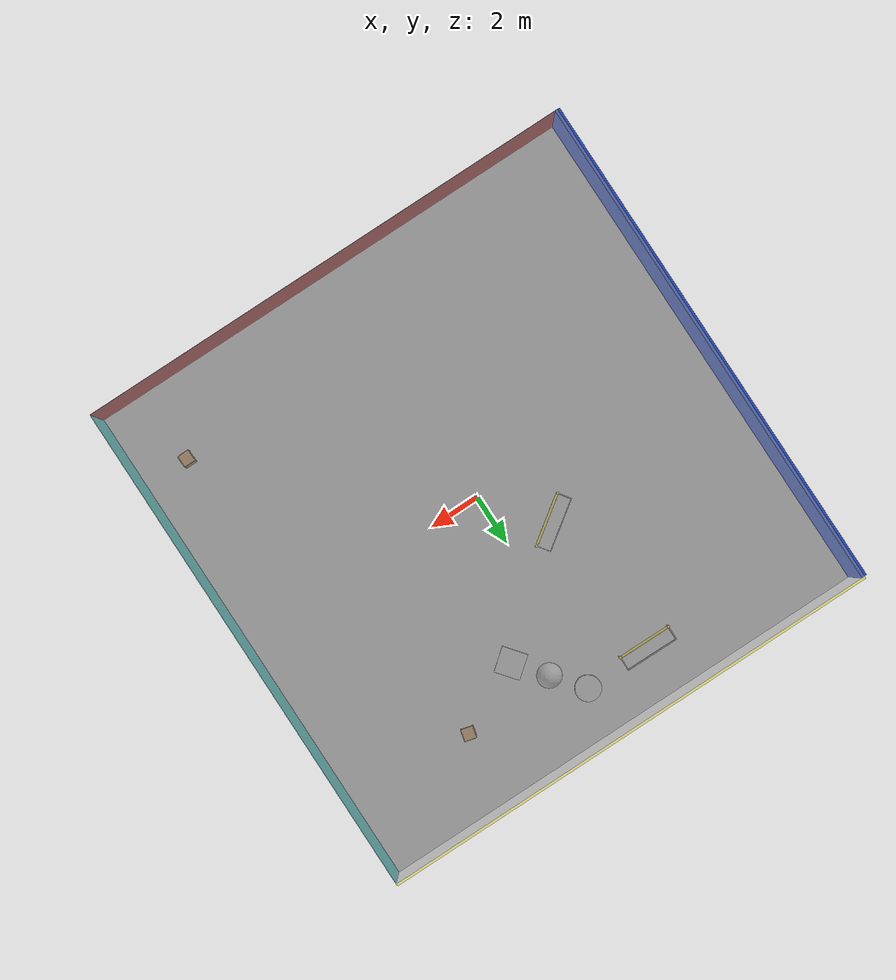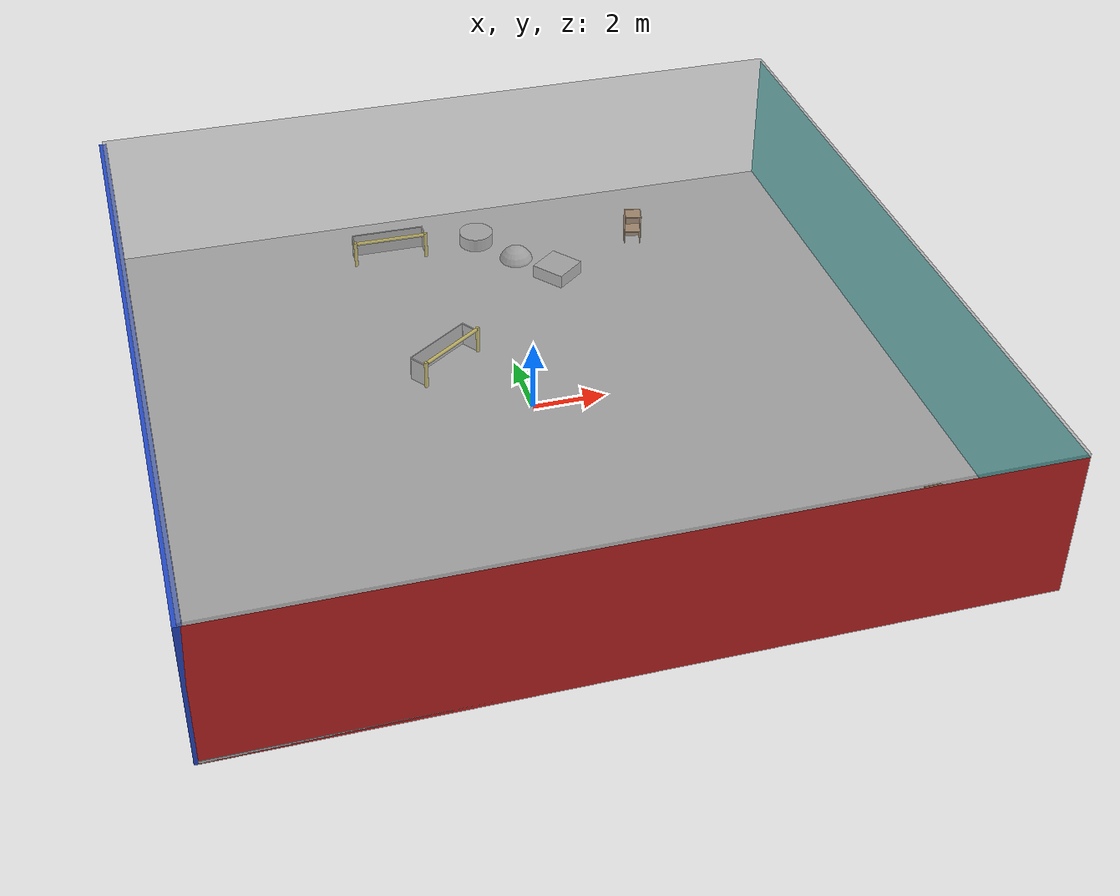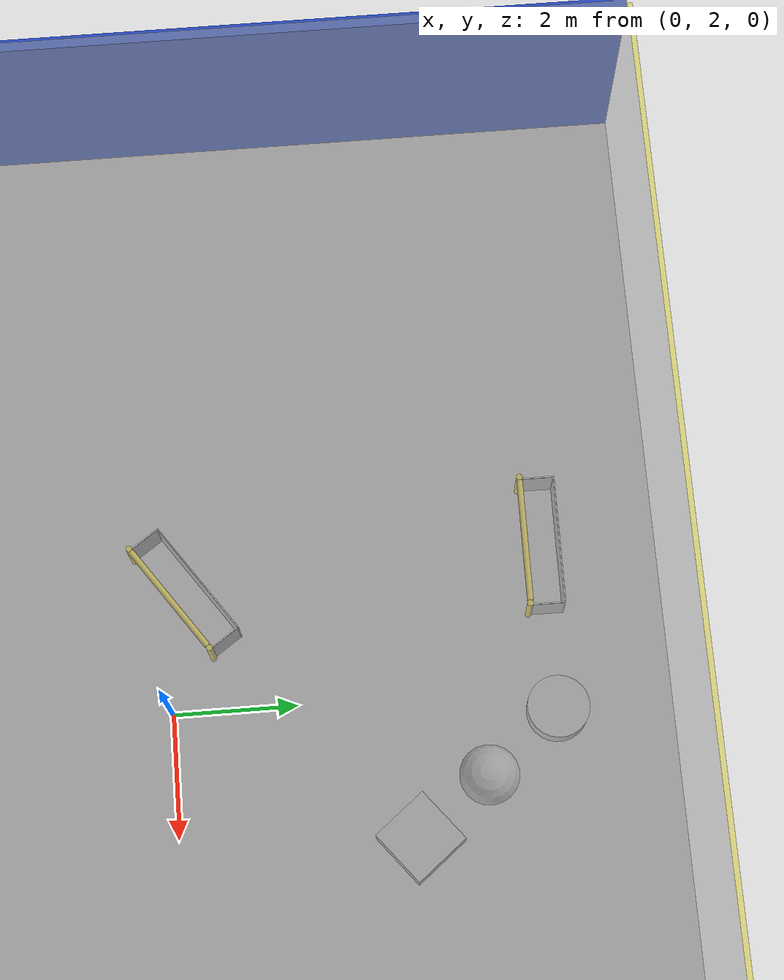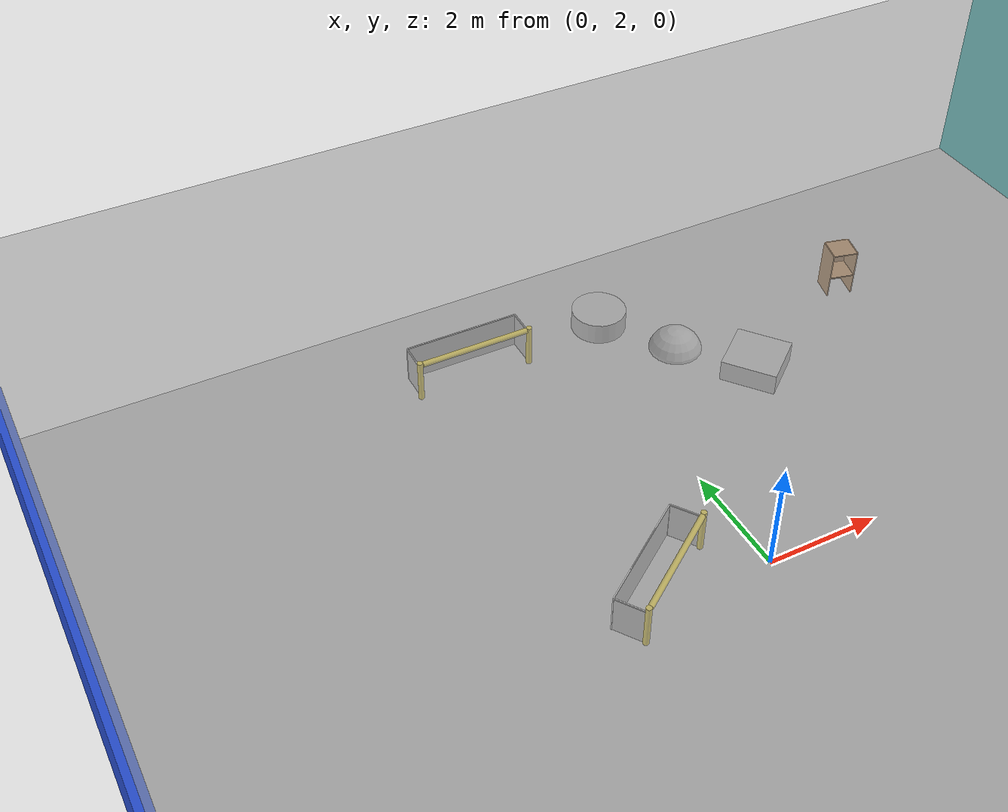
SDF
<sdf version="1.4">
 <world name="default">
  <physics type="ode">
   <max_step_size>0.001</max_step_size>
   <real_time_factor>1</real_time_factor>
   <real_time_update_rate>1000</real_time_update_rate>
   <gravity>0 0 -9.8</gravity>
  </physics>
  <scene><ambient>0.4 0.4 0.4 1</ambient><background>0.7 0.7 0.7 1</background><shadows>1</shadows></scene>
  <model name="Surrounding">
   <static>1</static>
   <link name="Ceiling">
    <collision name="Ceiling_Collision"><geometry><box><size>20 20 0.1</size></box></geometry></collision>
    <visual name="Ceiling_Visual">
     <geometry><box><size>20 20 0.1</size></box></geometry>
     <material>
      <script><uri>file://media/materials/scripts/gazebo.material</uri><name>Gazebo/GreyTransparent</name></script>
     </material>
    </visual>
    <pose>0 0 4.05 0 0 0</pose>
   </link>
   <link name="Wall_South">
    <collision name="Wall_South_Collision">
     <geometry><box><size>20 0 4</size></box></geometry>
     <pose>0 0 2 0 -0 0</pose>
    </collision>
    <visual name="Wall_South_Visual">
     <pose>0 0 2 0 -0 0</pose>
     <geometry><box><size>20 0 4</size></box></geometry>
     <material>
      <script><uri>file://media/materials/scripts/gazebo.material</uri><name>Gazebo/Red</name></script>
     </material>
    </visual>
    <velocity_decay><linear>0</linear><angular>0</angular></velocity_decay>
    <pose>0 -10 0 0 -0 0</pose>
   </link>
   <link name="Wall_East">
    <collision name="Wall_21_Collision">
     <geometry><box><size>20 0 4</size></box></geometry>
     <pose>0 0 2 0 -0 0</pose>
    </collision>
    <visual name="Wall_21_Visual">
     <pose>0 0 2 0 -0 0</pose>
     <geometry><box><size>20 0 4</size></box></geometry>
     <material>
      <script>
       <uri>file://media/materials/scripts/gazebo.material</uri>
       <name>Gazebo/TurquoiseGlowOutline</name>
      </script>
     </material>
    </visual>
    <velocity_decay><linear>0</linear><angular>0</angular></velocity_decay>
    <pose>10 0 0 0 -0 1.5708</pose>
   </link>
   <link name="Wall_North">
    <collision name="Wall_22_Collision">
     <geometry><box><size>20 0.2 4</size></box></geometry>
     <pose>0 0 2 0 -0 0</pose>
    </collision>
    <visual name="Wall_22_Visual">
     <pose>0 0 2 0 -0 0</pose>
     <geometry><box><size>20 0.2 4</size></box></geometry>
     <material>
      <script>
       <uri>file://media/materials/scripts/gazebo.material</uri>
       <name>Gazebo/YellowTransparent</name>
      </script>
     </material>
    </visual>
    <velocity_decay><linear>0</linear><angular>0</angular></velocity_decay>
    <pose>0 10 0 0 -0 0</pose>
   </link>
   <link name="Wall_West">
    <collision name="Wall_23_Collision">
     <geometry><box><size>20 0.2 4</size></box></geometry>
     <pose>0 0 2 0 -0 0</pose>
    </collision>
    <visual name="Wall_23_Visual">
     <pose>0 0 2 0 -0 0</pose>
     <geometry><box><size>20 0.2 4</size></box></geometry>
     <material>
      <script><uri>file://media/materials/scripts/gazebo.material</uri><name>Gazebo/Blue</name></script>
     </material>
    </visual>
    <velocity_decay><linear>0</linear><angular>0</angular></velocity_decay>
    <pose>-10 0 0 0 0 -1.5708</pose>
   </link>
   <link name="Ground_link">
    <collision name="collision">
     <pose>0 0 .05 0 -0 0</pose>
     <geometry><box><size>20 20 0.1</size></box></geometry>
    </collision>
    <visual name="visual">
     <pose>0 0 .05 0 -0 0</pose>
     <geometry><box><size>20 20 0.1</size></box></geometry>
     <material>
      <script><uri>file://media/materials/scripts/gazebo.material</uri><name>Gazebo/LightOff</name></script>
     </material>
    </visual>
   </link>
   <static>1</static>
  </model>
  <spherical_coordinates>
   <surface_model>EARTH_WGS84</surface_model>
   <latitude_deg>0</latitude_deg>
   <longitude_deg>0</longitude_deg>
   <elevation>0</elevation>
   <heading_deg>0</heading_deg>
  </spherical_coordinates>
  <light name="lightball_0" type="diffuse">
   <diffuse>0.8 0.8 0.8 1</diffuse>
   <specular>0.2 0.2 0.2 1</specular>
   <attenuation>
    <range>100</range>
    <constant>0.7</constant>
    <linear>0.01</linear>
    <quadratic>0.001</quadratic>
   </attenuation>
   <direction>-0.5 0.1 -0.9</direction>
   <pose>-5.42457853884 8.5883633985 0.952985177601 0 0 0</pose>
  </light>
  <light name="lightball_1" type="diffuse">
   <diffuse>0.8 0.8 0.8 1</diffuse>
   <specular>0.2 0.2 0.2 1</specular>
   <attenuation>
    <range>100</range>
    <constant>0.7</constant>
    <linear>0.01</linear>
    <quadratic>0.001</quadratic>
   </attenuation>
   <direction>-0.5 0.1 -0.9</direction>
   <pose>-0.470910711465 8.38088673768 3.82927996229 0 0 0</pose>
  </light>
  <light name="lightball_2" type="diffuse">
   <diffuse>0.8 0.8 0.8 1</diffuse>
   <specular>0.2 0.2 0.2 1</specular>
   <attenuation>
    <range>100</range>
    <constant>0.7</constant>
    <linear>0.01</linear>
    <quadratic>0.001</quadratic>
   </attenuation>
   <direction>-0.5 0.1 -0.9</direction>
   <pose>0.577659678553 -7.48828448301 1.0741626971 0 0 0</pose>
  </light>
  <light name="lightball_3" type="diffuse">
   <diffuse>0.8 0.8 0.8 1</diffuse>
   <specular>0.2 0.2 0.2 1</specular>
   <attenuation>
    <range>100</range>
    <constant>0.7</constant>
    <linear>0.01</linear>
    <quadratic>0.001</quadratic>
   </attenuation>
   <direction>-0.5 0.1 -0.9</direction>
   <pose>-6.73656728287 -1.20636747081 3.28376523723 0 0 0</pose>
  </light>
  <light name="lightball_4" type="diffuse">
   <diffuse>0.8 0.8 0.8 1</diffuse>
   <specular>0.2 0.2 0.2 1</specular>
   <attenuation>
    <range>100</range>
    <constant>0.7</constant>
    <linear>0.01</linear>
    <quadratic>0.001</quadratic>
   </attenuation>
   <direction>-0.5 0.1 -0.9</direction>
   <pose>-2.57423748455 -5.15575690792 1.50048582436 0 0 0</pose>
  </light>
  <light name="lightball_5" type="diffuse">
   <diffuse>0.8 0.8 0.8 1</diffuse>
   <specular>0.2 0.2 0.2 1</specular>
   <attenuation>
    <range>100</range>
    <constant>0.7</constant>
    <linear>0.01</linear>
    <quadratic>0.001</quadratic>
   </attenuation>
   <direction>-0.5 0.1 -0.9</direction>
   <pose>-2.19593813422 -9.1563104078 1.30278456369 0 0 0</pose>
  </light>
  <light name="lightball_6" type="diffuse">
   <diffuse>0.8 0.8 0.8 1</diffuse>
   <specular>0.2 0.2 0.2 1</specular>
   <attenuation>
    <range>100</range>
    <constant>0.7</constant>
    <linear>0.01</linear>
    <quadratic>0.001</quadratic>
   </attenuation>
   <direction>-0.5 0.1 -0.9</direction>
   <pose>-5.92422415976 -2.50414465555 1.01421327132 0 0 0</pose>
  </light>
  <light name="lightball_7" type="diffuse">
   <diffuse>0.8 0.8 0.8 1</diffuse>
   <specular>0.2 0.2 0.2 1</specular>
   <attenuation>
    <range>100</range>
    <constant>0.7</constant>
    <linear>0.01</linear>
    <quadratic>0.001</quadratic>
   </attenuation>
   <direction>-0.5 0.1 -0.9</direction>
   <pose>-9.80768290719 -3.08410337062 2.41668499871 0 0 0</pose>
  </light>
  <light name="lightball_8" type="diffuse">
   <diffuse>0.8 0.8 0.8 1</diffuse>
   <specular>0.2 0.2 0.2 1</specular>
   <attenuation>
    <range>100</range>
    <constant>0.7</constant>
    <linear>0.01</linear>
    <quadratic>0.001</quadratic>
   </attenuation>
   <direction>-0.5 0.1 -0.9</direction>
   <pose>6.37063695066 -4.39650255138 3.17824128817 0 0 0</pose>
  </light>
  <include>
   <uri>model://robocup_3Dsim_goal</uri>
   <pose>-1.71520604352 2.08739183517 0 0 0 2.18590384095</pose>
  </include>
  <include>
   <uri>model://robocup_3Dsim_goal</uri>
   <pose>-2.23850035961 7.82791409994 0 0 0 1.56462746373</pose>
  </include>
  <include>
   <uri>model://textured_shapes</uri>
   <pose>1.36216325185 6.96693301492 0 0 0 0.677199723857</pose>
  </include>
  <include><uri>model://cabinet</uri><pose>5.01486689582 7.08845885678 0 0 0 1.3320549151</pose></include>
  <include><uri>model://cabinet</uri><pose>8.15754219673 -7.05605300617 0 0 0 0.025534208836</pose></include>
 </world>
</sdf>

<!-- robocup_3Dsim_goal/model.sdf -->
<sdf version="1.5">
  <model name="robocup_3d_goal">
    <static>true</static>
    <link name="left_post">
      <pose>0 1.05 0.45 0 0 0</pose>
      <collision name="collision">
        <geometry>
          <cylinder>
            <radius>0.05</radius>
            <length>0.9</length>
          </cylinder>
        </geometry>
      </collision>
      <visual name="visual">
        <geometry>
          <cylinder>
            <radius>0.05</radius>
            <length>0.9</length>
          </cylinder>
        </geometry>
        <material>
          <script>
            <uri>file://media/materials/scripts/gazebo.material</uri>
            <name>Gazebo/ZincYellow</name>
          </script>
        </material>
      </visual>
    </link>
    <link name="left_support_horiz_lower">
      <pose>0.30 1.05 0.01 0 0 0</pose>
      <collision name="collision">
        <geometry>
          <box>
            <size>0.50 0.02 0.02</size>
          </box>
        </geometry>
      </collision>
      <visual name="visual">
        <geometry>
          <box>
            <size>0.50 0.02 0.02</size>
          </box>
        </geometry>
        <material>
          <script>
            <uri>file://media/materials/scripts/gazebo.material</uri>
            <name>Gazebo/White</name>
          </script>
        </material>
      </visual>
    </link>
    <link name="left_support_horiz_upper">
      <pose>0.30 1.05 0.79 0 0 0</pose>
      <collision name="collision">
        <geometry>
          <box>
            <size>0.50 0.02 0.02</size>
          </box>
        </geometry>
      </collision>
      <visual name="visual">
        <geometry>
          <box>
            <size>0.50 0.02 0.02</size>
          </box>
        </geometry>
        <material>
          <script>
            <uri>file://media/materials/scripts/gazebo.material</uri>
            <name>Gazebo/White</name>
          </script>
        </material>
      </visual>
    </link>
    <link name="left_support_vertical">
      <pose>0.56 1.05 0.4 0 1.5708 0</pose>
      <collision name="collision">
        <geometry>
          <box>
            <size>0.80 0.02 0.02</size>
          </box>
        </geometry>
      </collision>
      <visual name="visual">
        <geometry>
          <box>
            <size>0.80 0.02 0.02</size>
          </box>
        </geometry>
        <material>
          <script>
            <uri>file://media/materials/scripts/gazebo.material</uri>
            <name>Gazebo/White</name>
          </script>
        </material>
      </visual>
    </link>
    <link name="right_support_horiz_lower">
      <pose>0.30 -1.05 0.01 0 0 0</pose>
      <collision name="collision">
        <geometry>
          <box>
            <size>0.50 0.02 0.02</size>
          </box>
        </geometry>
      </collision>
      <visual name="visual">
        <geometry>
          <box>
            <size>0.50 0.02 0.02</size>
          </box>
        </geometry>
        <material>
          <script>
            <uri>file://media/materials/scripts/gazebo.material</uri>
            <name>Gazebo/White</name>
          </script>
        </material>
      </visual>
    </link>
    <link name="right_support_horiz_upper">
      <pose>0.30 -1.05 0.79 0 0 0</pose>
      <collision name="collision">
        <geometry>
          <box>
            <size>0.50 0.02 0.02</size>
          </box>
        </geometry>
      </collision>
      <visual name="visual">
        <geometry>
          <box>
            <size>0.50 0.02 0.02</size>
          </box>
        </geometry>
        <material>
          <script>
            <uri>file://media/materials/scripts/gazebo.material</uri>
            <name>Gazebo/White</name>
          </script>
        </material>
      </visual>
    </link>
    <link name="right_support_vertical">
      <pose>0.56 -1.05 0.4 0 1.5708 0</pose>
      <collision name="collision">
        <geometry>
          <box>
            <size>0.80 0.02 0.02</size>
          </box>
        </geometry>
      </collision>
      <visual name="visual">
        <geometry>
          <box>
            <size>0.80 0.02 0.02</size>
          </box>
        </geometry>
        <material>
          <script>
            <uri>file://media/materials/scripts/gazebo.material</uri>
            <name>Gazebo/White</name>
          </script>
        </material>
      </visual>
    </link>
    <link name="center_support_horiz_lower">
      <pose>0.56 0 0.01 0 1.5708 0</pose>
      <collision name="collision">
        <geometry>
          <box>
            <size>0.02 2.08 0.02</size>
          </box>
        </geometry>
      </collision>
      <visual name="visual">
        <geometry>
          <box>
            <size>0.02 2.08 0.02</size>
          </box>
        </geometry>
        <material>
          <script>
            <uri>file://media/materials/scripts/gazebo.material</uri>
            <name>Gazebo/White</name>
          </script>
        </material>
      </visual>
    </link>
    <link name="center_support_horiz_upper">
      <pose>0.56 0 0.79 0 1.5708 0</pose>
      <collision name="collision">
        <geometry>
          <box>
            <size>0.02 2.08 0.02</size>
          </box>
        </geometry>
      </collision>
      <visual name="visual">
        <geometry>
          <box>
            <size>0.02 2.08 0.02</size>
          </box>
        </geometry>
        <material>
          <script>
            <uri>file://media/materials/scripts/gazebo.material</uri>
            <name>Gazebo/White</name>
          </script>
        </material>
      </visual>
    </link>
    <link name="right_post">
      <pose>0 -1.05 0.45 0 0 0</pose>
      <collision name="collision">
        <geometry>
          <cylinder>
            <radius>0.05</radius>
            <length>0.9</length>
          </cylinder>
        </geometry>
      </collision>
      <visual name="visual">
        <geometry>
          <cylinder>
            <radius>0.05</radius>
            <length>0.9</length>
          </cylinder>
        </geometry>
        <material>
          <script>
            <uri>file://media/materials/scripts/gazebo.material</uri>
            <name>Gazebo/ZincYellow</name>
          </script>
        </material>
      </visual>
    </link>
    <link name="crossbar">
      <pose>0 0 0.85 1.57 1.57 0</pose>
      <collision name="collision">
        <geometry>
          <cylinder>
            <radius>0.05</radius>
            <length>2.0</length>
          </cylinder>
        </geometry>
      </collision>
      <visual name="visual">
        <geometry>
          <cylinder>
            <radius>0.05</radius>
            <length>2.0</length>
          </cylinder>
        </geometry>
        <material>
          <script>
            <uri>file://media/materials/scripts/gazebo.material</uri>
            <name>Gazebo/ZincYellow</name>
          </script>
        </material>
      </visual>
    </link>
    <link name="center_net">
      <pose>0.56 0 0.40 0 0 0</pose>
      <collision name="collision">
        <geometry>
          <box>
            <size>0.01 2.1 0.80</size>
          </box>
        </geometry>
      </collision>
      <visual name="visual">
        <geometry>
          <box>
            <size>0.01 2.1 0.80</size>
          </box>
        </geometry>
        <material>
          <script>
            <uri>model://../model_source/models/robocup09_spl_field/materials/scripts/</uri>
            <uri>model://../model_source/models/robocup09_spl_field/materials/textures/</uri>
            <name>RoboCup/Net</name>
          </script>
        </material>
      </visual>
    </link>
    <link name="left_net">
      <pose>0.30 1.05 0.40 0 0 0</pose>
      <collision name="collision">
        <geometry>
          <box>
            <size>0.50 0.01 0.76</size>
          </box>
        </geometry>
      </collision>
      <visual name="visual">
        <geometry>
          <box>
            <size>0.50 0.01 0.76</size>
          </box>
        </geometry>
        <material>
          <script>
            <uri>model://../model_source/models/robocup09_spl_field/materials/scripts/</uri>
            <uri>model://../model_source/models/robocup09_spl_field/materials/textures/</uri>
            <name>RoboCup/Net</name>
          </script>
        </material>
      </visual>
    </link>
    <link name="right_net">
      <pose>0.30 -1.05 0.40 0 0 0</pose>
      <collision name="collision">
        <geometry>
          <box>
            <size>0.50 0.01 0.76</size>
          </box>
        </geometry>
      </collision>
      <visual name="visual">
        <geometry>
          <box>
            <size>0.50 0.01 0.76</size>
          </box>
        </geometry>
        <material>
          <script>
            <uri>model://../model_source/models/robocup09_spl_field/materials/scripts/</uri>
            <uri>model://../model_source/models/robocup09_spl_field/materials/textures/</uri>
            <name>RoboCup/Net</name>
          </script>
        </material>
      </visual>
    </link>
  </model>
</sdf>

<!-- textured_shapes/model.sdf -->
<sdf version="1.6">
  <model name="textured_shapes">
    <pose>0 0 0.5 0 0 0</pose>
    <link name="box">
      <pose>0 -1.5 0 0 0 0</pose>
      <collision name="collision">
        <geometry>
          <box>
            <size>1 1 1</size>
          </box>
        </geometry>
      </collision>
      <visual name="visual">
        <geometry>
          <box>
            <size>1 1 1</size>
          </box>
        </geometry>
        <material>
          <script>
            <uri>model://../model_source/models/textured_shapes/materials/scripts</uri>
            <uri>model://../model_source/models/textured_shapes/materials/textures</uri>
            <name>TexturedShape/Squares</name>
          </script>
        </material>
      </visual>
    </link>
    <link name="sphere">
      <collision name="collision">
        <geometry>
          <sphere>
            <radius>0.5</radius>
          </sphere>
        </geometry>
      </collision>
      <visual name="visual">
        <geometry>
          <sphere>
            <radius>0.5</radius>
          </sphere>
        </geometry>
        <material>
          <script>
            <uri>model://../model_source/models/textured_shapes/materials/scripts</uri>
            <uri>model://../model_source/models/textured_shapes/materials/textures</uri>
            <name>TexturedShape/Squares</name>
          </script>
        </material>
      </visual>
    </link>
    <link name="cylinder">
      <pose>0 1.5 0 0 0 0</pose>
      <collision name="collision">
        <geometry>
          <cylinder>
            <radius>0.5</radius>
            <length>1</length>
          </cylinder>
        </geometry>
      </collision>
      <visual name="visual">
        <geometry>
          <cylinder>
            <radius>0.5</radius>
            <length>1</length>
          </cylinder>
        </geometry>
        <material>
          <script>
            <uri>model://../model_source/models/textured_shapes/materials/scripts</uri>
            <uri>model://../model_source/models/textured_shapes/materials/textures</uri>
            <name>TexturedShape/Squares</name>
          </script>
        </material>
      </visual>
    </link>
  </model>
</sdf>

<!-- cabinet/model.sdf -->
<sdf version="1.5">
  <model name="cabinet">
    <static>true</static>
    <link name="cabinet_bottom_plate">
      <inertial>
        <pose>0 0 -1 0 0 0</pose>
        <inertia>
          <ixx>2.050000</ixx>
          <ixy>0</ixy>
          <ixz>0</ixz>
          <iyy>2.050000</iyy>
          <iyz>0</iyz>
          <izz>2.050000</izz>
        </inertia>
        <mass>25.000000</mass>
      </inertial>
      <collision name="cabinet_bottom_plate_geom">
        <pose>0 0 0.010000 0 0 0</pose>
        <geometry>
          <box>
            <size>0.450000 0.450000 0.020000</size>
          </box>
        </geometry>
      </collision>
      <visual name="cabinet_bottom_plate_geom_visual">
        <pose>0 0 0.010000 0 0 0</pose>
        <geometry>
          <box>
            <size>0.450000 0.450000 0.020000</size>
          </box>
        </geometry>
        <material>
          <script>
            <uri>model://media/materials/scripts/gazebo.material</uri>
            <name>Gazebo/Wood</name>
          </script>
        </material>
      </visual>
      <collision name="cabinet_bottom_plate_geom_cabinet_back_plate">
        <pose>0.235000 0 0.510000 0 0 0</pose>
        <geometry>
          <box>
            <size>0.020000 0.450000 1.020000</size>
          </box>
        </geometry>
      </collision>
      <visual name="cabinet_bottom_plate_geom_cabinet_back_plate_visual">
        <pose>0.235000 0 0.510000 0 0 0</pose>
        <geometry>
          <box>
            <size>0.020000 0.450000 1.020000</size>
          </box>
        </geometry>
        <material>
          <script>
            <uri>model://media/materials/scripts/gazebo.material</uri>
            <name>Gazebo/Wood</name>
          </script>
        </material>
      </visual>
      <collision name="cabinet_bottom_plate_geom_cabinet_left_plate">
        <pose>0 0.235000 0.510000 0 0 0</pose>
        <geometry>
          <box>
            <size>0.450000 0.020000 1.020000</size>
          </box>
        </geometry>
      </collision>
      <visual name="cabinet_bottom_plate_geom_cabinet_left_plate_visual">
        <pose>0 0.235000 0.510000 0 0 0</pose>
        <geometry>
          <box>
            <size>0.450000 0.020000 1.020000</size>
          </box>
        </geometry>
        <material>
          <script>
            <uri>model://media/materials/scripts/gazebo.material</uri>
            <name>Gazebo/Wood</name>
          </script>
        </material>
      </visual>
      <collision name="cabinet_bottom_plate_geom_cabinet_middle_plate">
        <pose>0 0 0.510000 0 0 0</pose>
        <geometry>
          <box>
            <size>0.450000 0.450000 0.020000</size>
          </box>
        </geometry>
      </collision>
      <visual name="cabinet_bottom_plate_geom_cabinet_middle_plate_visual">
        <pose>0 0 0.510000 0 0 0</pose>
        <geometry>
          <box>
            <size>0.450000 0.450000 0.020000</size>
          </box>
        </geometry>
        <material>
          <script>
            <uri>model://media/materials/scripts/gazebo.material</uri>
            <name>Gazebo/Wood</name>
          </script>
        </material>
      </visual>
      <collision name="cabinet_bottom_plate_geom_cabinet_right_plate">
        <pose>0 -0.235000 0.510000 0 0 0</pose>
        <geometry>
          <box>
            <size>0.450000 0.020000 1.020000</size>
          </box>
        </geometry>
      </collision>
      <visual name="cabinet_bottom_plate_geom_cabinet_right_plate_visual">
        <pose>0 -0.235000 0.510000 0 0 0</pose>
        <geometry>
          <box>
            <size>0.450000 0.020000 1.020000</size>
          </box>
        </geometry>
        <material>
          <script>
            <uri>model://media/materials/scripts/gazebo.material</uri>
            <name>Gazebo/Wood</name>
          </script>
        </material>
      </visual>
      <collision name="cabinet_bottom_plate_geom_cabinet_top_plate">
        <pose>0 0 1.010000 0 0 0</pose>
        <geometry>
          <box>
            <size>0.450000 0.450000 0.020000</size>
          </box>
        </geometry>
      </collision>
      <visual name="cabinet_bottom_plate_geom_cabinet_top_plate_visual">
        <pose>0 0 1.010000 0 0 0</pose>
        <geometry>
          <box>
            <size>0.450000 0.450000 0.020000</size>
          </box>
        </geometry>
        <material>
          <script>
            <uri>model://media/materials/scripts/gazebo.material</uri>
            <name>Gazebo/Wood</name>
          </script>
        </material>
      </visual>
    </link>
  </model>
</sdf>
